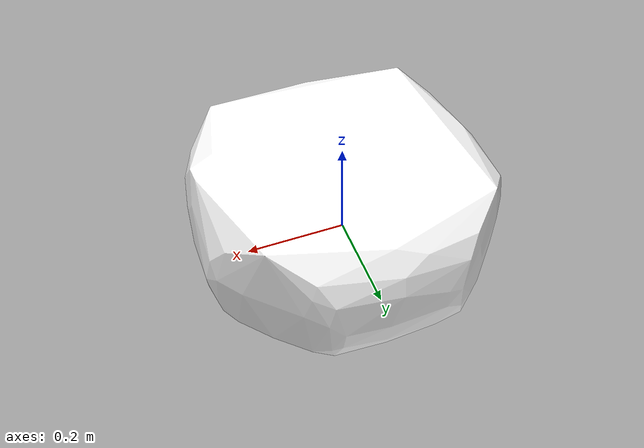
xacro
<?xml version="1.0" ?>
<robot xmlns:xacro="http://www.ros.org/wiki/xacro">
  <link name="base_link"/>
    <joint name="omni_chassis_joint" type="fixed">
      <origin rpy="0 0 0" xyz="0 0 0"/>
      <parent link="base_link"/>
      <child link="omni_chassis_base_link"/>
    </joint>
    <link name="omni_chassis_base_link">
      <inertial>
        <origin rpy="0 0 0" xyz="0.00094269 0.00017452 0.09326"/>
        <mass value="8.7914"/>
        <inertia ixx="0.11584" ixy="-0.00011125" ixz="0.00045932" iyy="0.08221" iyz="2.8393E-06" izz="0.14295"/>
      </inertial>
      <visual>
        <origin rpy="0 0 0" xyz="0 0 0"/>
        <geometry>
          <mesh filename="package://galbot_one_description/meshes/chassis/omni_chassis_base_link.stl"/>
        </geometry>
        <material name="">
          <color rgba="1 1 1 1"/>
        </material>
      </visual>
      <collision>
        <origin rpy="0 0 0" xyz="0 0 0"/>
        <geometry>
          <mesh filename="package://galbot_one_description/meshes/chassis/omni_chassis_base_link_convex.stl"/>
        </geometry>
      </collision>
    </link>
</robot>
